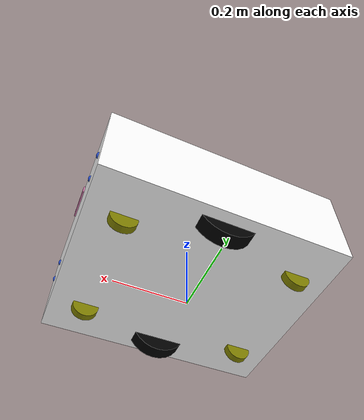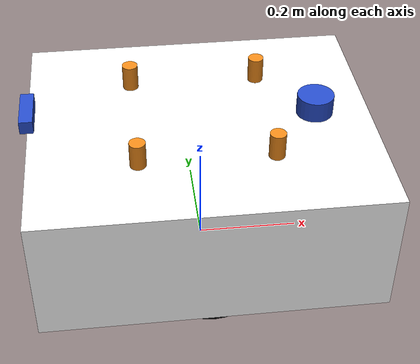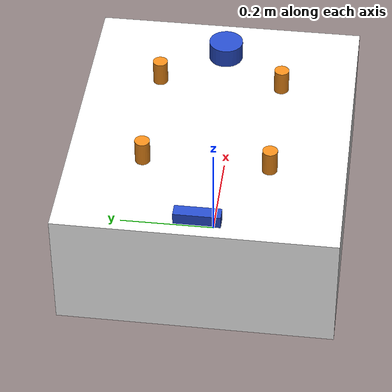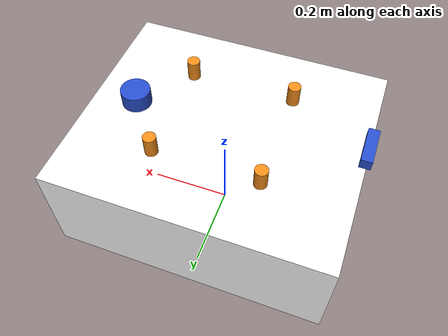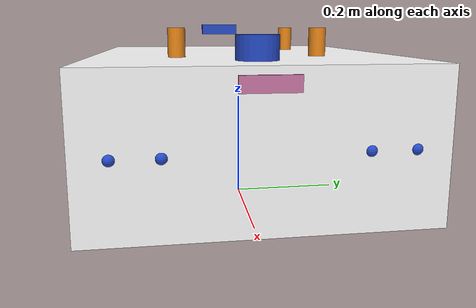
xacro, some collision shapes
<?xml version="1.0"?>
<robot xmlns:xacro="http://www.ros.org/wiki/xacro" name="xxx">
    <xacro:include filename="$(find xxx_description)/urdf/xxx_properties.xacro"/>
    <xacro:include filename="$(find xxx_description)/urdf/xxx_chassis.xacro"/>
    <xacro:include filename="$(find xxx_description)/urdf/xxx_wheel.xacro"/>
    <xacro:include filename="$(find xxx_description)/urdf/xxx_castor.xacro"/>
    <xacro:include filename="$(find xxx_description)/urdf/xxx_sensor.xacro"/>
    <xacro:include filename="$(find xxx_description)/urdf/xxx_gazebo.xacro"/>
    <xacro:chassis/>
    <xacro:wheel
        name="left"
        translation="
            0
            ${WHEEL_SEPARATION/2}
            ${WHEEL_RADIUS-(BASE_HEIGHT/2+BASE_ELEVATION)}"
        rotation="0 0 0"
        parent="base_link"/>
    <xacro:wheel
        name="right"
        translation="
            0
            ${-WHEEL_SEPARATION/2}
            ${WHEEL_RADIUS-(BASE_HEIGHT/2+BASE_ELEVATION)}"
        rotation="0 0 0"
        parent="base_link"/>
    <xacro:castor
        name="right_front"
        translation="
            ${CASTOR_SEPARATION_X/2}
            ${CASTOR_SEPARATION_Y/2}
            ${CASTOR_RADIUS-(BASE_HEIGHT/2+BASE_ELEVATION)}"
        rotation="0 0 0"
        parent="base_link"/>
    <xacro:castor
        name="left_front"
        translation="
            ${CASTOR_SEPARATION_X/2}
            ${-CASTOR_SEPARATION_Y/2}
            ${CASTOR_RADIUS-(BASE_HEIGHT/2+BASE_ELEVATION)}"
        rotation="0 0 0"
        parent="base_link"/>
    <xacro:castor
        name="right_rear"
        translation="
            ${-CASTOR_SEPARATION_X/2}
            ${CASTOR_SEPARATION_Y/2}
            ${CASTOR_RADIUS-(BASE_HEIGHT/2+BASE_ELEVATION)}"
        rotation="0 0 0"
        parent="base_link"/>
    <xacro:castor
        name="left_rear"
        translation="
            ${-CASTOR_SEPARATION_X/2}
            ${-CASTOR_SEPARATION_Y/2}
            ${CASTOR_RADIUS-(BASE_HEIGHT/2+BASE_ELEVATION)}"
        rotation="0 0 0"
        parent="base_link"/>
    <xacro:sensor />
    <xacro:gazebo />
</robot>

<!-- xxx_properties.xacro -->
<robot xmlns:xacro="http://www.ros.org/wiki/xacro">
    <!-- Mathematics Constants -->
    <xacro:property name="PI" value="3.1415926535897931"/>
    <!-- Base Visual Properties -->
    <xacro:property name="BASE_LENGTH" value="0.65"/>
    <xacro:property name="BASE_WIDTH" value="0.55"/>
    <xacro:property name="BASE_HEIGHT" value="0.25"/>
    <xacro:property name="BASE_ELEVATION" value="0.04"/>
    <xacro:property name="BASE_MESH_PATH" value="package://xxx_description/meshes/coconut.stl"/>
    <xacro:property name="BASE_MESH_Z_OFFSET" value="0.018"/>
    <!-- Base Inertial Properties -->
    <xacro:property name="BASE_M" value="40.0"/>
    <xacro:property name="BASE_COM" value="0.0002 0.0001 -0.0001"/>
    <xacro:property name="BASE_Ixx" value="1.79366667"/>
    <xacro:property name="BASE_Iyy" value="1.28666667"/>
    <xacro:property name="BASE_Izz" value="2.30966667"/>
    <xacro:property name="BASE_Ixy" value="0"/>
    <xacro:property name="BASE_Ixz" value="0"/>
    <xacro:property name="BASE_Iyz" value="0"/>
    <!-- Base Pole -->
    <xacro:property name="POLE_RADIUS" value="0.015"/>
    <xacro:property name="POLE_HEIGHT" value="0.05"/>
    <xacro:property name="POLE_SEPARATION_X" value="0.25"/>
    <xacro:property name="POLE_SEPARATION_Y" value="0.25"/>

    <!-- Wheel Visual Properties -->
    <xacro:property name="WHEEL_RADIUS" value="0.08"/>
    <xacro:property name="WHEEL_THICKNESS" value="0.04"/>
    <xacro:property name="WHEEL_SEPARATION" value="0.45"/>
    <!-- Wheel Inertial Properties -->
    <xacro:property name="WHEEL_M" value="2.9"/>
    <xacro:property name="WHEEL_COM" value="0 0 0"/>
    <xacro:property name="WHEEL_Ixx" value="0.00564437"/>
    <xacro:property name="WHEEL_Iyy" value="0.00564437"/>
    <xacro:property name="WHEEL_Izz" value="0.01047625"/>
    <xacro:property name="WHEEL_Ixy" value="0"/>
    <xacro:property name="WHEEL_Ixz" value="0"/>
    <xacro:property name="WHEEL_Iyz" value="0"/>
    <!-- Castor Visual Properties -->
    <xacro:property name="CASTOR_RADIUS" value="0.035"/>
    <xacro:property name="CASTOR_THICKNESS" value="0.02"/>
    <xacro:property name="CASTOR_SEPARATION_X" value="0.46"/>
    <xacro:property name="CASTOR_SEPARATION_Y" value="0.32"/>
    <!-- Castor Inertial Properties -->
    <xacro:property name="CASTOR_M" value="0.2"/>
    <xacro:property name="CASTOR_COM" value="0 0 0"/>
    <xacro:property name="CASTOR_Ixx" value="0.00004437"/>
    <xacro:property name="CASTOR_Iyy" value="0.00004437"/>
    <xacro:property name="CASTOR_Izz" value="0.00047625"/>
    <xacro:property name="CASTOR_Ixy" value="0"/>
    <xacro:property name="CASTOR_Ixz" value="0"/>
    <xacro:property name="CASTOR_Iyz" value="0"/>
    <!-- Castor Visual Properties -->
    <xacro:property name="LIDAR_RADIUS" value="0.035"/>
    <xacro:property name="LIDAR_THICKNESS" value="0.04"/>
    <!-- Colors -->
    <xacro:property name="BASE_COLOR" value="1 1 1 1"/>
    <xacro:property name="WHEEL_COLOR" value="0 0 0 1"/>
    <xacro:property name="CASTOR_COLOR" value="0.5 0.5 0 1"/>
    <!-- Joint Properties -->
    <xacro:property name="U_MAX" value="300"/>
    <xacro:property name="V_MAX" value="300"/>
    <xacro:property name="WHEEL_JOINT_DAMP" value="0"/>

</robot>

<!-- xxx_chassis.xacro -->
<robot xmlns:xacro="http://www.ros.org/wiki/xacro" name="xxx_chasis">
    <xacro:include filename="$(find xxx_description)/urdf/xxx_properties.xacro"/>
    <xacro:include filename="$(find xxx_description)/urdf/xxx_pole.xacro"/>
    <xacro:macro name="chassis" params="">
        <link name="base_footprint"/>
        <link name="base_link">
            <inertial>
                <origin xyz="${BASE_COM}"/>
                <mass value="${BASE_M}"/>
                <inertia
                    ixx="${BASE_Ixx}"
                    ixy="${BASE_Ixy}"
                    ixz="${BASE_Ixz}"
                    iyy="${BASE_Iyy}"
                    iyz="${BASE_Iyz}"
                    izz="${BASE_Izz}"/>
            </inertial>
            <visual>
                <origin xyz="0 0 -${BASE_MESH_Z_OFFSET}" rpy="0 0 ${PI/2}"/>
                <geometry>
                    <mesh filename="${BASE_MESH_PATH}" />
                </geometry>
                <material name="chassis_color">
                    <color rgba="${BASE_COLOR}"/>
                </material>
            </visual>
            <collision>
                <geometry>
                    <box size="${BASE_LENGTH} ${BASE_WIDTH} ${BASE_HEIGHT}"/>
                </geometry>
            </collision>
        </link>
        <joint name="base_footprint_to_base_link" type="fixed">
            <parent link="base_footprint"/>
            <child link="base_link"/>
            <origin xyz="0.0 0.0 ${BASE_HEIGHT/2+BASE_ELEVATION}"/>
        </joint>

        <xacro:pole
            name="front_left"
            translation="
                ${POLE_SEPARATION_X/2}
                ${POLE_SEPARATION_Y/2}
                ${(BASE_HEIGHT+POLE_HEIGHT)/2}"
            parent="base_link"/>
        <xacro:pole
            name="front_right"
            translation="
                ${POLE_SEPARATION_X/2}
                ${-POLE_SEPARATION_Y/2}
                ${(BASE_HEIGHT+POLE_HEIGHT)/2}"
            parent="base_link"/>
        <xacro:pole
            name="back_left"
            translation="
                ${-POLE_SEPARATION_X/2}
                ${POLE_SEPARATION_Y/2}
                ${(BASE_HEIGHT+POLE_HEIGHT)/2}"
            parent="base_link"/>
        <xacro:pole
            name="back_right"
            translation="
                ${-POLE_SEPARATION_X/2}
                ${-POLE_SEPARATION_Y/2}
                ${(BASE_HEIGHT+POLE_HEIGHT)/2}"
            parent="base_link"/>

    </xacro:macro>
</robot>

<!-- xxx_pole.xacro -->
<robot xmlns:xacro="http://www.ros.org/wiki/xacro" name="xxx_pole">
    <xacro:include filename="$(find xxx_description)/urdf/xxx_properties.xacro"/>
    <xacro:macro name="pole" params="name parent translation">
        <link name="${name}_pole">
            <visual>
                <geometry>
                    <cylinder radius="${POLE_RADIUS}" length="${POLE_HEIGHT}"/>
                </geometry>
            </visual>
            <collision>
                <geometry>
                    <cylinder radius="${POLE_RADIUS}" length="${POLE_HEIGHT}"/>
                </geometry>
            </collision>
        </link>
        <joint name="${name}_pole_joint" type="fixed">
            <parent link="${parent}"/>
            <child link="${name}_pole"/>
            <origin xyz="${translation}"/>
        </joint>
    </xacro:macro>
</robot>

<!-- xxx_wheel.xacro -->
<robot name="xxx_wheel" xmlns:xacro="http:///www.ros.org/wiki/xacro">
    <xacro:include filename="$(find xxx_description)/urdf/xxx_properties.xacro"/>
        <xacro:macro name="wheel" params="name translation rotation parent">

            <link name="${name}_wheel">
                <inertial>
                    <origin rpy="0.0 0.0 0.0" xyz="${WHEEL_COM}"/>
                    <mass value="${WHEEL_M}"/>
                   <inertia ixx="${WHEEL_Ixx}" ixy="${WHEEL_Ixy}" ixz="${WHEEL_Ixz}" iyy="${WHEEL_Iyy}" iyz="${WHEEL_Iyz}" izz="${WHEEL_Izz}"/>
                </inertial>
                <visual>
                    <origin rpy="${PI/2} 0.0 0.0" xyz="0.0 0.0 0.0"/>
                    <geometry>
                        <cylinder radius="${WHEEL_RADIUS}" length="0.04"/>
                    </geometry>
                    <material name="${name}_wheel_color">
                        <color rgba="${WHEEL_COLOR}"/>
                    </material>
                </visual>
                <collision>
                    <origin rpy="${PI/2} 0.0 0.0" xyz="0.0 0.0 0.0"/>
                    <geometry>
                        <cylinder radius="${WHEEL_RADIUS}" length="0.04"/>
                    </geometry>
                </collision>
            </link>
            <joint name="${name}_wheel_joint" type="continuous">
                <origin rpy="${rotation}" xyz="${translation}"/>
                <parent link="${parent}"/>
                <child link="${name}_wheel"/>
                <axis xyz="0.0 1.0 0.0"/>
                <limit effort="${U_MAX}" velocity="${V_MAX}"/>
                <dynamics damping="${WHEEL_JOINT_DAMP}"/>
            </joint>

            <transmission name="${name}_wheel_motor">
                <type>transmission_interface/SimpleTransmission</type>
                <joint name="${name}_wheel_joint">
                    <hardwareInterface>hardware_interface/EffortJointInterface</hardwareInterface>
                </joint>
                <actuator name="${name}_wheel_motor">
                    <hardwareInterface>hardware_interface/EffortJointInterface</hardwareInterface>
                    <mechanicalReduction>1</mechanicalReduction>
                </actuator>
            </transmission>
        </xacro:macro>
</robot>

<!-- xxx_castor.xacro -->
<robot xmlns:xacro="http://www.ros.org/wiki/xacro" name="xxx_castor">
    <xacro:include filename="$(find xxx_description)/urdf/xxx_properties.xacro"/>
    <xacro:macro name="castor" params="name translation rotation parent">
        <link name="${name}_castor">
            <inertial>
                <origin xyz="${CASTOR_COM}"/>
                <mass value="${CASTOR_M}"/>
                <inertia
                    ixx="${CASTOR_Ixx}"
                    ixy="${CASTOR_Ixy}"
                    ixz="${CASTOR_Ixz}"
                    iyy="${CASTOR_Iyy}"
                    iyz="${CASTOR_Iyz}"
                    izz="${CASTOR_Izz}"/>
            </inertial>
            <!--No need for visual since it will be combined in meshes-->
            <visual>
                <geometry>
                    <cylinder
                        radius="${CASTOR_RADIUS}"
                        length="${CASTOR_THICKNESS}"/>
                </geometry>
                <origin rpy="${PI/2} 0.0 0.0"/>
                <material name="${name}_castor_color">
                    <color rgba="${CASTOR_COLOR}"/>
                </material>
            </visual>
            <collision>
                <geometry>
                    <cylinder
                        radius="${CASTOR_RADIUS}"
                        length="${CASTOR_THICKNESS}"/>
                </geometry>
                <origin rpy="${PI/2} 0.0 0.0"/>
            </collision>
        </link>
        <joint name="${name}_castor_joint" type="continuous">
            <parent link="${parent}"/>
            <child link="${name}_castor"/>
            <origin xyz="${translation}" rpy="${rotation}"/>
            <axis xyz="0.0 1.0 0.0"/>
        </joint>

    </xacro:macro>
</robot>

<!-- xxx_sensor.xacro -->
<robot xmlns:xacro="http://www.ros.org/wiki/xacro" name="xxx_sensor">
    <xacro:include filename="$(find xxx_description)/urdf/xxx_properties.xacro"/>
    <xacro:macro name="sensor" params="">
        <link name="lidar">
            <visual>
                <geometry>
                    <cylinder
                        radius="${LIDAR_RADIUS}"
                        length="${LIDAR_THICKNESS}"/>
                </geometry>
                <origin rpy="0.0 0.0 0.0"/>
            </visual>
        </link>
        <joint name="lidar_joint" type="fixed">
            <parent link="base_link"/>
            <child link="lidar"/>
            <origin xyz="0.22 0 ${(BASE_HEIGHT+LIDAR_THICKNESS)/2}" rpy="0 0 0"/>
        </joint>

        <link name="t265">
            <visual>
                <origin xyz="0 0 0" rpy="0 0 0" />
                <geometry>
                    <box size="0.025 0.09 0.025"/>
                </geometry>
            </visual>
        </link>
        <joint name="t265_joint" type="fixed">
            <parent link="base_link"/>
            <child link="t265" />
            <origin xyz="-0.3195 -0.0081 0.17" rpy="0 0 3.14159265" />
        </joint>

        <link name="camera">
            <visual>
                <origin xyz="0 0 0" rpy="0 0 0" />
                <geometry>
                    <box size="0.025 0.09 0.025"/>
                </geometry>
            </visual>
        </link>
        <link name="camera_optical"/>
        <joint name="camera_joint" type="fixed">
            <parent link="base_link" />
            <child link="camera" />
            <origin xyz="0.317 0 0.1" rpy="0 0 0" />
        </joint>
        <joint name="camera_optical_joint" type="fixed">
            <parent link="camera" />
            <child link="camera_optical" />
            <origin xyz="0 0 0" rpy="-1.570796325 0 -1.570796325" />
        </joint>

        <link name="ultrasonic1">
            <visual>
                <geometry>
                    <sphere
                        radius="0.01" />
                </geometry>
                <origin rpy="0.0 0.0 0.0"/>
            </visual>
        </link>
        <joint name="ultrasonic1_joint" type="fixed">
            <parent link="base_link"/>
            <child link="ultrasonic1"/>
            <origin xyz="0.32 0.22 0" rpy="0 0 0.087" />
        </joint>

        <link name="ultrasonic2">
            <visual>
                <geometry>
                    <sphere
                        radius="0.01" />
                </geometry>
                <origin rpy="0.0 0.0 0.0"/>
            </visual>
        </link>
        <joint name="ultrasonic2_joint" type="fixed">
            <parent link="base_link"/>
            <child link="ultrasonic2"/>
            <origin xyz="0.32 0.15 0" rpy="0 0 0" />
        </joint>

        <link name="ultrasonic3">
            <visual>
                <geometry>
                    <sphere
                        radius="0.01" />
                </geometry>
                <origin rpy="0.0 0.0 0.0"/>
            </visual>
        </link>
        <joint name="ultrasonic3_joint" type="fixed">
            <parent link="base_link"/>
            <child link="ultrasonic3"/>
            <origin xyz="0.32 -0.15 0" rpy="0 0 0" />
        </joint>

        <link name="ultrasonic4">
            <visual>
                <geometry>
                    <sphere
                        radius="0.01" />
                </geometry>
                <origin rpy="0.0 0.0 0.0"/>
            </visual>
        </link>
        <joint name="ultrasonic4_joint" type="fixed">
            <parent link="base_link"/>
            <child link="ultrasonic4"/>
            <origin xyz="0.32 -0.22 0" rpy="0 0 -0.087" />
        </joint>

        <link name="ultrasonic5">
            <visual>
                <geometry>
                    <sphere
                        radius="0.01" />
                </geometry>
                <origin rpy="0.0 0.0 0.0"/>
            </visual>
        </link>
        <joint name="ultrasonic5_joint" type="fixed">
            <parent link="base_link"/>
            <child link="ultrasonic5"/>
            <origin xyz="-0.29 -0.23 0" rpy="0 0 3.57" />
        </joint>

        <link name="ultrasonic6">
            <visual>
                <geometry>
                    <sphere
                        radius="0.01" />
                </geometry>
                <origin rpy="0.0 0.0 0.0"/>
            </visual>
        </link>
        <joint name="ultrasonic6_joint" type="fixed">
            <parent link="base_link"/>
            <child link="ultrasonic6"/>
            <origin xyz="-0.31 -0.17 0" rpy="0 0 3.23" />
        </joint>

        <link name="ultrasonic7">
            <visual>
                <geometry>
                    <sphere
                        radius="0.01" />
                </geometry>
                <origin rpy="0.0 0.0 0.0"/>
            </visual>
        </link>
        <joint name="ultrasonic7_joint" type="fixed">
            <parent link="base_link"/>
            <child link="ultrasonic7"/>
            <origin xyz="-0.31 0.17 0" rpy="0 0 3.05" />
        </joint>

        <link name="ultrasonic8">
            <visual>
                <geometry>
                    <sphere
                        radius="0.01" />
                </geometry>
                <origin rpy="0.0 0.0 0.0"/>
            </visual>
        </link>
        <joint name="ultrasonic8_joint" type="fixed">
            <parent link="base_link"/>
            <child link="ultrasonic8"/>
            <origin xyz="-0.29 0.23 0" rpy="0 0 2.70" />
        </joint>

    </xacro:macro>
</robot>
